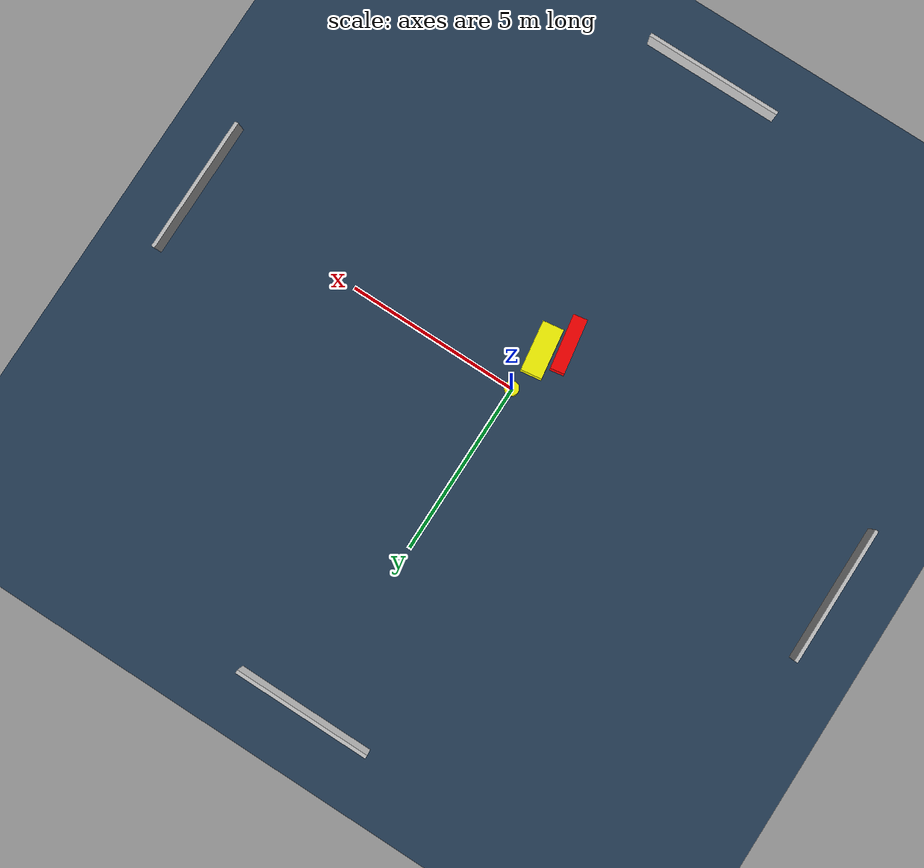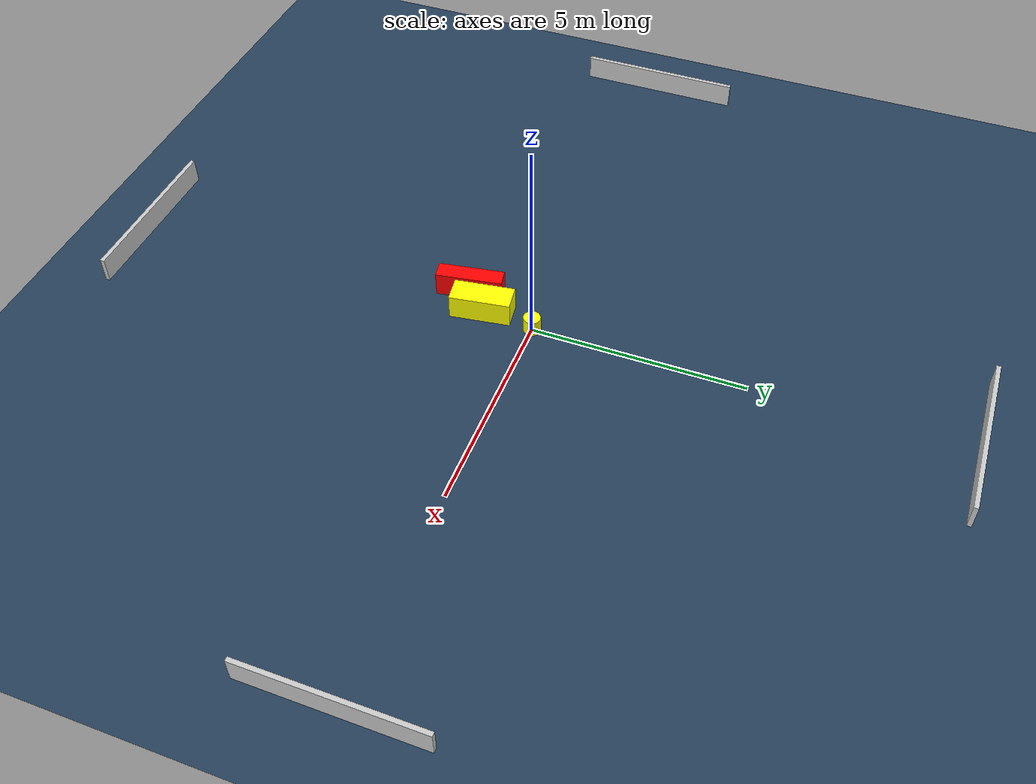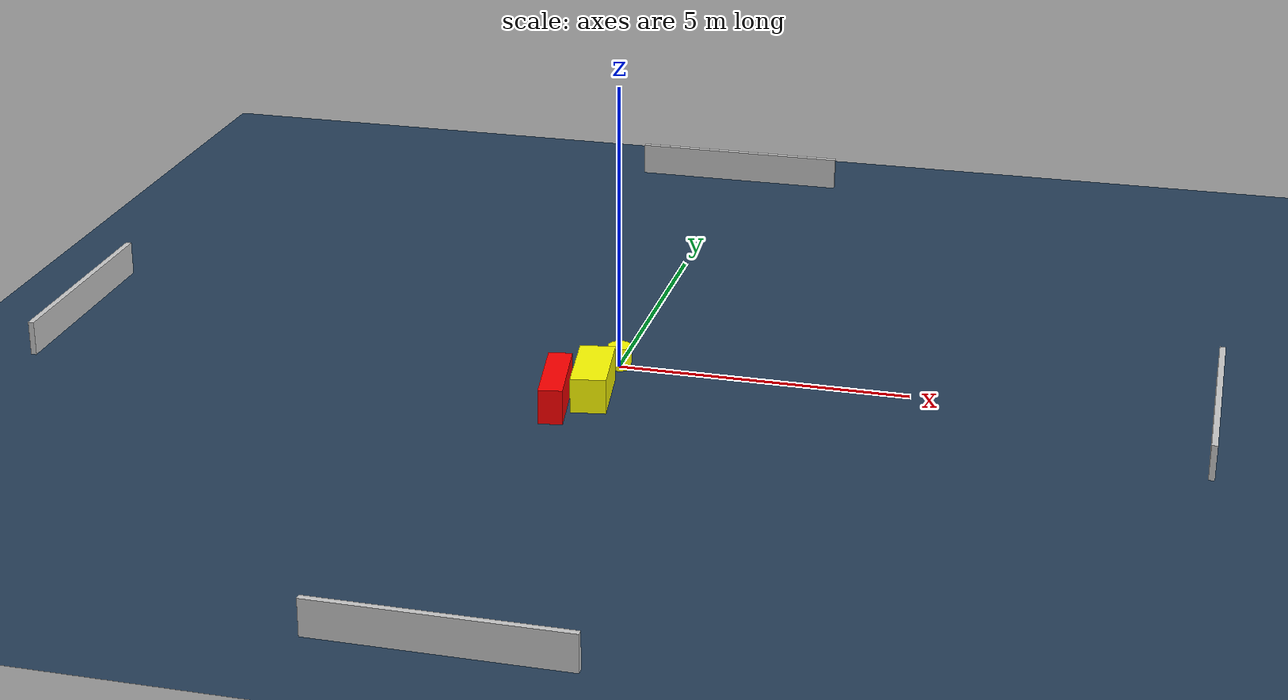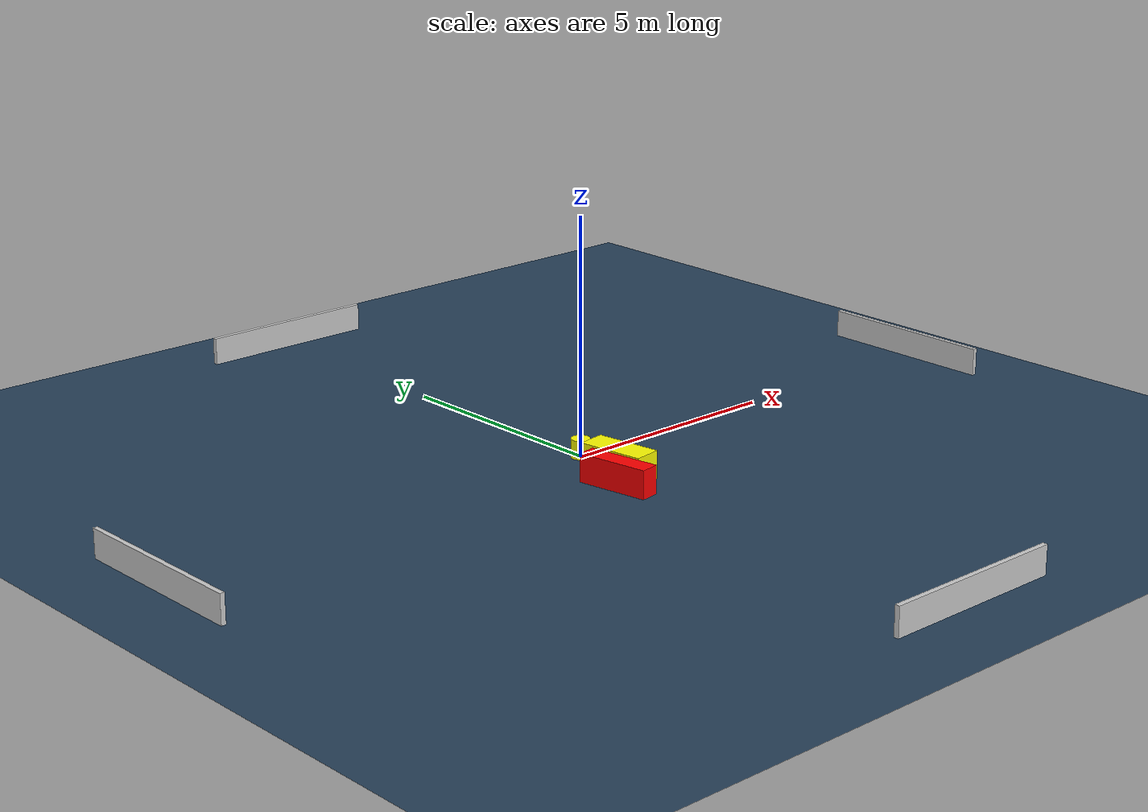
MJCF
<?xml version="1.0" ?>
<mujoco model="generated_environment">
  <option timestep="0.01" integrator="RK4" cone="elliptic"/>
  <default>
    <geom density="1"/>
  </default>
  <asset>
    <texture builtin="gradient" height="3072" name="skybox" rgb1="0.3 0.5 0.7" rgb2="0 0 0" type="skybox" width="512"/>
    <texture builtin="checker" height="300" name="groundplane" rgb1="0.2 0.3 0.4" rgb2="0.1 0.2 0.3" type="2d" width="300"/>
    <material name="groundplane" reflectance="0.2" texrepeat="5 5" texture="groundplane"/>
  </asset>
  <worldbody>
    <light dir="0 0 -1" directional="true" pos="0 0 1.5"/>
    <geom condim="3" friction="0.5 0.005 0.001" material="groundplane" name="floor" pos="0 0 0" size="0 0 0.05" type="plane"/>
    <body name="walls">
      <geom name="wall_1" condim="4" pos="-10.0 0.0 0.3" rgba="0.800000011920929 0.800000011920929 0.800000011920929 1.0" size="0.05 2.0 0.3" type="box"/>
      <geom name="wall_2" condim="4" pos="10.0 0.0 0.3" rgba="0.800000011920929 0.800000011920929 0.800000011920929 1.0" size="0.05 2.0 0.3" type="box"/>
      <geom name="wall_3" condim="4" pos="0.0 -10.0 0.3" rgba="0.800000011920929 0.800000011920929 0.800000011920929 1.0" size="2.0 0.05 0.3" type="box"/>
      <geom name="wall_4" condim="4" pos="0.0 10.0 0.3" rgba="0.800000011920929 0.800000011920929 0.800000011920929 1.0" size="2.0 0.05 0.3" type="box"/>
    </body>
    <body name="robot">
      <joint name="joint_x" type="slide" pos="0 0 0" axis="1 0 0"/>
      <joint name="joint_y" type="slide" pos="0 0 0" axis="0 1 0"/>
      <geom name="robot" type="cylinder" pos="0.0 0.0 0.2" size="0.2 0.2 0.0" mass="5.0" friction="1.0 0.005 0.0001" condim="4" rgba="1.0 1.0 0.0 1.0"/>
    </body>
    <body name="obstacle_1_movable">
      <geom name="obstacle_1_movable" condim="4" pos="-0.13887527202520003 -1.2746415096583221 0.3" euler="0 0 8.166438603031994" friction="0.0 0.005 0.001" rgba="1.0 1.0 0.0 1.0" size="0.2998291730728916 0.7115486267716888 0.3" type="box" mass="0.1"/>
      <joint type="free"/>
    </body>
    <body name="obstacle_2_static">
      <geom name="obstacle_2_static" condim="4" pos="-0.6467742213860642 -1.7792696131536934 0.3" euler="0 0 99.26992103798277" friction="0.0 0.005 0.001" rgba="1.0 0.0 0.0 1.0" size="0.7782997820822386 0.2021751899859403 0.3" type="box"/>
    </body>
  </worldbody>
  <actuator>
    <motor name="actuator_x" joint="joint_x" gear="1" ctrlrange="-1 1"/>
    <motor name="actuator_y" joint="joint_y" gear="1" ctrlrange="-1 1"/>
  </actuator>
</mujoco>
